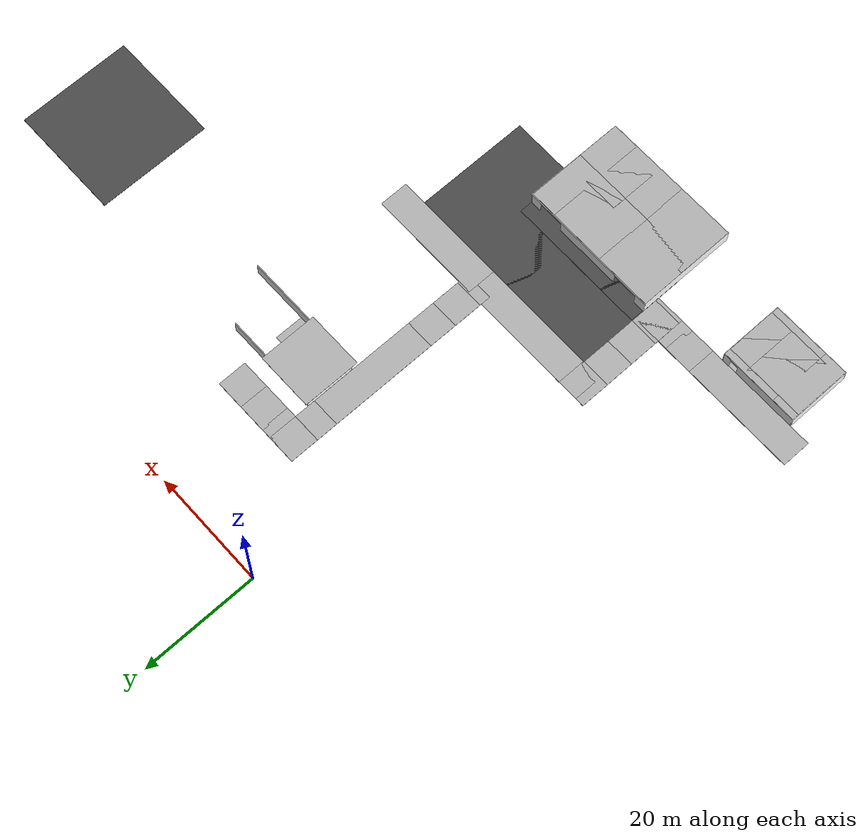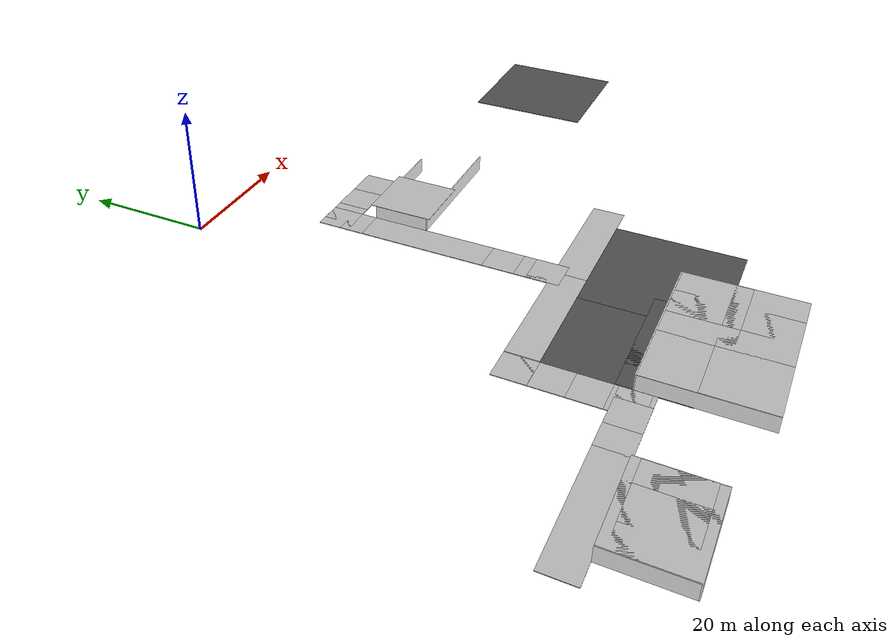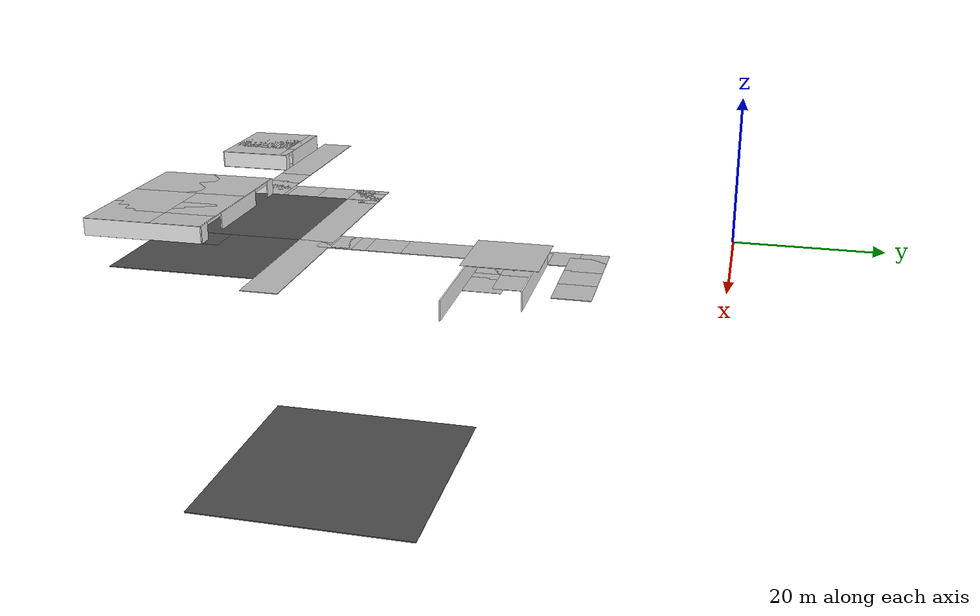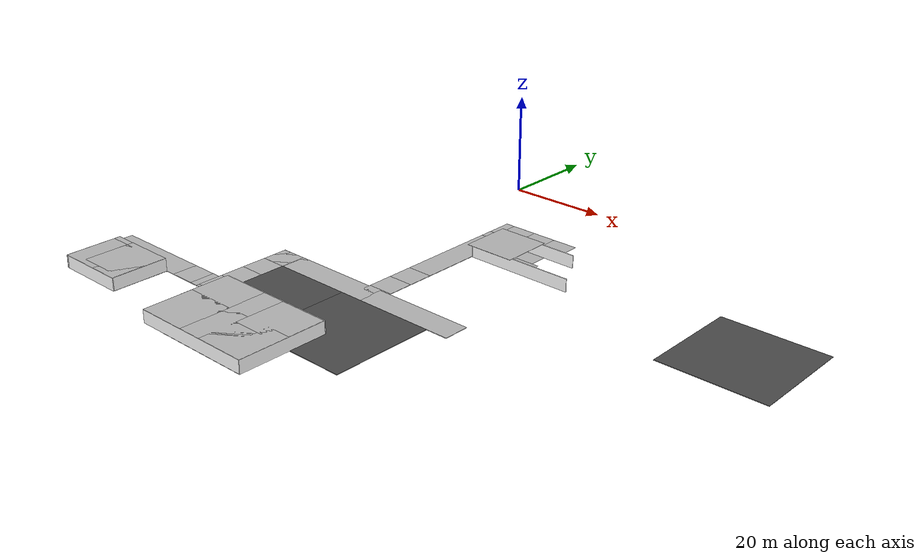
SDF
<sdf version="1.6">
 <world name="default">
  <model name="mainoffice">
   <pose>42.7555 15.4488 0 0 -0 0</pose>
   <link name="Wall_30">
    <collision name="Wall_30_Collision">
     <geometry><box><size>21.5 0.15 2.5</size></box></geometry>
     <pose>0 0 1.25 0 -0 0</pose>
    </collision>
    <visual name="Wall_30_Visual">
     <pose>0 0 1.25 0 -0 0</pose>
     <geometry><box><size>21.5 0.15 2.5</size></box></geometry>
     <material>
      <script>
       <uri>model://office_env/materials/scripts</uri>
       <uri>model://office_env/materials/textures</uri>
       <name>wall</name>
      </script>
      <ambient>1 1 1 1</ambient>
     </material>
    </visual>
    <pose>-17.1741 -47.325 0 0 -0 3.14159</pose>
   </link>
   <link name="Wall_31">
    <collision name="Wall_31_Collision">
     <geometry><box><size>8.75 0.15 2.5</size></box></geometry>
     <pose>0 0 1.25 0 -0 0</pose>
    </collision>
    <visual name="Wall_31_Visual">
     <pose>0 0 1.25 0 -0 0</pose>
     <geometry><box><size>8.75 0.15 2.5</size></box></geometry>
     <material>
      <script>
       <uri>model://office_env/materials/scripts</uri>
       <uri>model://office_env/materials/textures</uri>
       <name>wall</name>
      </script>
      <ambient>1 1 1 1</ambient>
     </material>
    </visual>
    <pose>-27.8491 -43.025 0 0 -0 1.5708</pose>
   </link>
   <link name="Wall_32">
    <collision name="Wall_32_Collision">
     <geometry><box><size>16.5 0.15 2.5</size></box></geometry>
     <pose>0 0 1.25 0 -0 0</pose>
    </collision>
    <visual name="Wall_32_Visual">
     <pose>0 0 1.25 0 -0 0</pose>
     <geometry><box><size>16.5 0.15 2.5</size></box></geometry>
     <material>
      <script>
       <uri>model://office_env/materials/scripts</uri>
       <uri>model://office_env/materials/textures</uri>
       <name>wall</name>
      </script>
      <ambient>1 1 1 1</ambient>
     </material>
    </visual>
    <pose>-19.6741 -38.725 0 0 -0 0</pose>
   </link>
   <static>1</static>
  </model>
  <model name="office3_0">
   <pose>-28.0882 -79.6403 0 0 -0 0</pose>
   <link name="Wall_226">
    <collision name="Wall_226_Collision">
     <geometry><box><size>11.25 0.15 2.5</size></box></geometry>
     <pose>0 0 1.25 0 -0 0</pose>
    </collision>
    <visual name="Wall_226_Visual">
     <pose>0 0 1.25 0 -0 0</pose>
     <geometry><box><size>11.25 0.15 2.5</size></box></geometry>
     <material>
      <script>
       <uri>model://office_env/materials/scripts</uri>
       <uri>model://office_env/materials/textures</uri>
       <name>wall</name>
      </script>
      <ambient>1 1 1 1</ambient>
     </material>
    </visual>
    <pose>-7.05 0 0 0 -0 1.5708</pose>
   </link>
   <link name="Wall_228">
    <pose>0 5.55 0 0 -0 0</pose>
    <visual name="Wall_228_Visual_0">
     <pose>-1.41788 0 1.25 0 -0 0</pose>
     <geometry><box><size>11.4142 0.15 2.5</size></box></geometry>
     <material>
      <script>
       <uri>model://office_env/materials/scripts</uri>
       <uri>model://office_env/materials/textures</uri>
       <name>wall</name>
      </script>
      <ambient>1 1 1 1</ambient>
     </material>
    </visual>
    <collision name="Wall_228_Collision_0">
     <geometry><box><size>11.4142 0.15 2.5</size></box></geometry>
     <pose>-1.41788 0 1.25 0 -0 0</pose>
    </collision>
    <visual name="Wall_228_Visual_1">
     <pose>6.45712 0 1.25 0 -0 0</pose>
     <geometry><box><size>1.33575 0.15 2.5</size></box></geometry>
     <material>
      <script>
       <uri>model://office_env/materials/scripts</uri>
       <uri>model://office_env/materials/textures</uri>
       <name>wall</name>
      </script>
      <ambient>1 1 1 1</ambient>
     </material>
    </visual>
    <collision name="Wall_228_Collision_1">
     <geometry><box><size>1.33575 0.15 2.5</size></box></geometry>
     <pose>6.45712 0 1.25 0 -0 0</pose>
    </collision>
    <visual name="Wall_228_Visual_2">
     <pose>5.03925 0 2.25 0 -0 0</pose>
     <geometry><box><size>1.5 0.15 0.5</size></box></geometry>
     <material>
      <script>
       <uri>model://office_env/materials/scripts</uri>
       <uri>model://office_env/materials/textures</uri>
       <name>wall</name>
      </script>
      <ambient>1 1 1 1</ambient>
     </material>
    </visual>
    <collision name="Wall_228_Collision_2">
     <geometry><box><size>1.5 0.15 0.5</size></box></geometry>
     <pose>5.03925 0 2.25 0 -0 0</pose>
    </collision>
   </link>
   <link name="Wall_229">
    <collision name="Wall_229_Collision">
     <geometry><box><size>11.25 0.15 2.5</size></box></geometry>
     <pose>0 0 1.25 0 -0 0</pose>
    </collision>
    <visual name="Wall_229_Visual">
     <pose>0 0 1.25 0 -0 0</pose>
     <geometry><box><size>11.25 0.15 2.5</size></box></geometry>
     <material>
      <script>
       <uri>model://office_env/materials/scripts</uri>
       <uri>model://office_env/materials/textures</uri>
       <name>wall</name>
      </script>
      <ambient>1 1 1 1</ambient>
     </material>
    </visual>
    <pose>7.05 0 0 0 0 -1.5708</pose>
   </link>
   <link name="Wall_230">
    <collision name="Wall_230_Collision">
     <geometry><box><size>14 0.15 2.5</size></box></geometry>
     <pose>0 0 1.25 0 -0 0</pose>
    </collision>
    <visual name="Wall_230_Visual">
     <pose>0 0 1.25 0 -0 0</pose>
     <geometry><box><size>14 0.15 2.5</size></box></geometry>
     <material>
      <script>
       <uri>model://office_env/materials/scripts</uri>
       <uri>model://office_env/materials/textures</uri>
       <name>wall</name>
      </script>
      <ambient>1 1 1 1</ambient>
     </material>
    </visual>
    <pose>0.125 -5.55 0 0 -0 3.14159</pose>
   </link>
   <link name="Wall_231">
    <collision name="Wall_231_Collision">
     <geometry><box><size>0.4 0.15 2.5</size></box></geometry>
     <pose>0 0 1.25 0 -0 0</pose>
    </collision>
    <visual name="Wall_231_Visual">
     <pose>0 0 1.25 0 -0 0</pose>
     <geometry><box><size>0.4 0.15 2.5</size></box></geometry>
     <material>
      <script>
       <uri>model://office_env/materials/scripts</uri>
       <uri>model://office_env/materials/textures</uri>
       <name>wall</name>
      </script>
      <ambient>1 1 1 1</ambient>
     </material>
    </visual>
    <pose>-6.925 -5.55 0 0 -0 3.14159</pose>
   </link>
   <link name="Wall_235">
    <pose>2.82004 3.69571 0 0 0 -1.5708</pose>
    <visual name="Wall_235_Visual_0">
     <pose>-1.26863 0 1.25 0 -0 0</pose>
     <geometry><box><size>1.21274 0.15 2.5</size></box></geometry>
     <material>
      <script>
       <uri>model://office_env/materials/scripts</uri>
       <uri>model://office_env/materials/textures</uri>
       <name>wall</name>
      </script>
      <ambient>1 1 1 1</ambient>
     </material>
    </visual>
    <collision name="Wall_235_Collision_0">
     <geometry><box><size>1.21274 0.15 2.5</size></box></geometry>
     <pose>-1.26863 0 1.25 0 -0 0</pose>
    </collision>
    <visual name="Wall_235_Visual_1">
     <pose>1.35637 0 1.25 0 -0 0</pose>
     <geometry><box><size>1.03726 0.15 2.5</size></box></geometry>
     <material>
      <script>
       <uri>model://office_env/materials/scripts</uri>
       <uri>model://office_env/materials/textures</uri>
       <name>wall</name>
      </script>
      <ambient>1 1 1 1</ambient>
     </material>
    </visual>
    <collision name="Wall_235_Collision_1">
     <geometry><box><size>1.03726 0.15 2.5</size></box></geometry>
     <pose>1.35637 0 1.25 0 -0 0</pose>
    </collision>
    <visual name="Wall_235_Visual_2">
     <pose>0.087742 0 2.25 0 -0 0</pose>
     <geometry><box><size>1.5 0.15 0.5</size></box></geometry>
     <material>
      <script>
       <uri>model://office_env/materials/scripts</uri>
       <uri>model://office_env/materials/textures</uri>
       <name>wall</name>
      </script>
      <ambient>1 1 1 1</ambient>
     </material>
    </visual>
    <collision name="Wall_235_Collision_2">
     <geometry><box><size>1.5 0.15 0.5</size></box></geometry>
     <pose>0.087742 0 2.25 0 -0 0</pose>
    </collision>
   </link>
   <link name="Wall_236">
    <collision name="Wall_236_Collision">
     <geometry><box><size>4.25 0.15 2.5</size></box></geometry>
     <pose>0 0 1.25 0 -0 0</pose>
    </collision>
    <visual name="Wall_236_Visual">
     <pose>0 0 1.25 0 -0 0</pose>
     <geometry><box><size>4.25 0.15 2.5</size></box></geometry>
     <material>
      <script>
       <uri>model://office_env/materials/scripts</uri>
       <uri>model://office_env/materials/textures</uri>
       <name>wall</name>
      </script>
      <ambient>1 1 1 1</ambient>
     </material>
    </visual>
    <pose>4.87004 1.89571 0 0 -0 0</pose>
   </link>
   <static>1</static>
  </model>
  <model name="park_1">
   <pose>5 -79.6403 0 0 -0 0</pose>
   <link name="Wall_10">
    <collision name="Wall_10_Collision">
     <geometry><box><size>24.75 0.15 2.5</size></box></geometry>
     <pose>0 0 1.25 0 -0 0</pose>
    </collision>
    <visual name="Wall_10_Visual">
     <pose>0 0 1.25 0 -0 0</pose>
     <geometry><box><size>24.75 0.15 2.5</size></box></geometry>
     <material>
      <script>
       <uri>model://office_env/materials/scripts</uri>
       <uri>model://office_env/materials/textures</uri>
       <name>wall</name>
      </script>
      <ambient>1 1 1 1</ambient>
     </material>
    </visual>
    <pose>0 -8.8 0 0 -0 0</pose>
   </link>
   <link name="Wall_11">
    <collision name="Wall_11_Collision">
     <geometry><box><size>17.75 0.15 2.5</size></box></geometry>
     <pose>0 0 1.25 0 -0 0</pose>
    </collision>
    <visual name="Wall_11_Visual">
     <pose>0 0 1.25 0 -0 0</pose>
     <geometry><box><size>17.75 0.15 2.5</size></box></geometry>
     <material>
      <script>
       <uri>model://office_env/materials/scripts</uri>
       <uri>model://office_env/materials/textures</uri>
       <name>wall</name>
      </script>
      <ambient>1 1 1 1</ambient>
     </material>
    </visual>
    <pose>12.3 0 0 0 -0 1.5708</pose>
   </link>
   <link name="Wall_12">
    <pose>0 8.8 0 0 -0 3.14159</pose>
    <visual name="Wall_12_Visual_0">
     <pose>-11.3671 0 1.25 0 -0 0</pose>
     <geometry><box><size>2.0158 0.15 2.5</size></box></geometry>
     <material>
      <script>
       <uri>model://office_env/materials/scripts</uri>
       <uri>model://office_env/materials/textures</uri>
       <name>wall</name>
      </script>
      <ambient>1 1 1 1</ambient>
     </material>
    </visual>
    <collision name="Wall_12_Collision_0">
     <geometry><box><size>2.0158 0.15 2.5</size></box></geometry>
     <pose>-11.3671 0 1.25 0 -0 0</pose>
    </collision>
    <visual name="Wall_12_Visual_1">
     <pose>-0.005473 0 1.25 0 -0 0</pose>
     <geometry><box><size>11.7075 0.15 2.5</size></box></geometry>
     <material>
      <script>
       <uri>model://office_env/materials/scripts</uri>
       <uri>model://office_env/materials/textures</uri>
       <name>wall</name>
      </script>
      <ambient>1 1 1 1</ambient>
     </material>
    </visual>
    <collision name="Wall_12_Collision_1">
     <geometry><box><size>11.7075 0.15 2.5</size></box></geometry>
     <pose>-0.005473 0 1.25 0 -0 0</pose>
    </collision>
    <visual name="Wall_12_Visual_2">
     <pose>11.3616 0 1.25 0 -0 0</pose>
     <geometry><box><size>2.02674 0.15 2.5</size></box></geometry>
     <material>
      <script>
       <uri>model://office_env/materials/scripts</uri>
       <uri>model://office_env/materials/textures</uri>
       <name>wall</name>
      </script>
      <ambient>1 1 1 1</ambient>
     </material>
    </visual>
    <collision name="Wall_12_Collision_2">
     <geometry><box><size>2.02674 0.15 2.5</size></box></geometry>
     <pose>11.3616 0 1.25 0 -0 0</pose>
    </collision>
    <visual name="Wall_12_Visual_3">
     <pose>-8.1092 0 2.3 0 -0 0</pose>
     <geometry><box><size>4.5 0.15 0.4</size></box></geometry>
     <material>
      <script>
       <uri>model://office_env/materials/scripts</uri>
       <uri>model://office_env/materials/textures</uri>
       <name>wall</name>
      </script>
      <ambient>1 1 1 1</ambient>
     </material>
    </visual>
    <collision name="Wall_12_Collision_3">
     <geometry><box><size>4.5 0.15 0.4</size></box></geometry>
     <pose>-8.1092 0 2.3 0 -0 0</pose>
    </collision>
    <visual name="Wall_12_Visual_4">
     <pose>8.09826 0 2.3 0 -0 0</pose>
     <geometry><box><size>4.5 0.15 0.4</size></box></geometry>
     <material>
      <script>
       <uri>model://office_env/materials/scripts</uri>
       <uri>model://office_env/materials/textures</uri>
       <name>wall</name>
      </script>
      <ambient>1 1 1 1</ambient>
     </material>
    </visual>
    <collision name="Wall_12_Collision_4">
     <geometry><box><size>4.5 0.15 0.4</size></box></geometry>
     <pose>8.09826 0 2.3 0 -0 0</pose>
    </collision>
   </link>
   <link name="Wall_4">
    <collision name="Wall_4_Collision">
     <geometry><box><size>17.75 0.15 2.5</size></box></geometry>
     <pose>0 0 1.25 0 -0 0</pose>
    </collision>
    <visual name="Wall_4_Visual">
     <pose>0 0 1.25 0 -0 0</pose>
     <geometry><box><size>17.75 0.15 2.5</size></box></geometry>
     <material>
      <script>
       <uri>model://office_env/materials/scripts</uri>
       <uri>model://office_env/materials/textures</uri>
       <name>wall</name>
      </script>
      <ambient>1 1 1 1</ambient>
     </material>
    </visual>
    <pose>-12.3 0 0 0 0 -1.5708</pose>
   </link>
   <static>1</static>
  </model>
  <model name="asphalt_plane">
   <static>1</static>
   <link name="link">
    <collision name="collision"><geometry><box><size>20 20 0.1</size></box></geometry></collision>
    <visual name="visual">
     <cast_shadows>0</cast_shadows>
     <geometry><box><size>20 20 0.1</size></box></geometry>
     <material>
      <script>
       <uri>model://asphalt_plane/materials/scripts</uri>
       <uri>model://asphalt_plane/materials/textures</uri>
       <name>vrc/asphalt</name>
      </script>
     </material>
    </visual>
   </link>
   <pose>70.7475 -31.5972 0 0 -0 0</pose>
  </model>
  <model name="asphalt_plane_21">
   <static>1</static>
   <link name="link">
    <collision name="collision"><geometry><box><size>20 20 0.1</size></box></geometry></collision>
    <visual name="visual">
     <cast_shadows>0</cast_shadows>
     <geometry><box><size>20 20 0.1</size></box></geometry>
     <material>
      <script>
       <uri>model://asphalt_plane/materials/scripts</uri>
       <uri>model://asphalt_plane/materials/textures</uri>
       <name>vrc/asphalt</name>
      </script>
     </material>
    </visual>
   </link>
   <pose>7.25861 -78.4975 0 0 -0 0</pose>
  </model>
  <model name="asphalt_plane_22">
   <static>1</static>
   <link name="link">
    <collision name="collision"><geometry><box><size>20 20 0.1</size></box></geometry></collision>
    <visual name="visual">
     <cast_shadows>0</cast_shadows>
     <geometry><box><size>20 20 0.1</size></box></geometry>
     <material>
      <script>
       <uri>model://asphalt_plane/materials/scripts</uri>
       <uri>model://asphalt_plane/materials/textures</uri>
       <name>vrc/asphalt</name>
      </script>
     </material>
    </visual>
   </link>
   <pose>2.73538 -78.4496 0 0 -0 0</pose>
  </model>
  <model name="asphalt_plane_23">
   <static>1</static>
   <link name="link">
    <collision name="collision"><geometry><box><size>20 20 0.1</size></box></geometry></collision>
    <visual name="visual">
     <cast_shadows>0</cast_shadows>
     <geometry><box><size>20 20 0.1</size></box></geometry>
     <material>
      <script>
       <uri>model://asphalt_plane/materials/scripts</uri>
       <uri>model://asphalt_plane/materials/textures</uri>
       <name>vrc/asphalt</name>
      </script>
     </material>
    </visual>
   </link>
   <pose>2.60492 -68.4597 0 0 -0 0</pose>
  </model>
  <model name="asphalt_plane_24">
   <static>1</static>
   <link name="link">
    <collision name="collision"><geometry><box><size>20 20 0.1</size></box></geometry></collision>
    <visual name="visual">
     <cast_shadows>0</cast_shadows>
     <geometry><box><size>20 20 0.1</size></box></geometry>
     <material>
      <script>
       <uri>model://asphalt_plane/materials/scripts</uri>
       <uri>model://asphalt_plane/materials/textures</uri>
       <name>vrc/asphalt</name>
      </script>
     </material>
    </visual>
   </link>
   <pose>18.2239 -68.4616 0 0 -0 0</pose>
  </model>
  <model name="table_5">
   <static>0</static>
   <link name="link">
    <collision name="surface">
     <pose>0 0 1 0 -0 0</pose>
     <geometry><box><size>1.5 0.8 0.03</size></box></geometry>
     <surface><friction><ode><mu>0.6</mu><mu2>0.6</mu2></ode></friction></surface>
    </collision>
    <visual name="visual1">
     <pose>0 0 1 0 -0 0</pose>
     <geometry><box><size>1.4 0.8 0.04</size></box></geometry>
     <material>
      <script><uri>file://media/materials/scripts/gazebo.material</uri><name>Gazebo/Wood</name></script>
     </material>
    </visual>
    <collision name="front_left_leg">
     <pose>0.68 0.38 0.5 0 -0 0</pose>
     <geometry><cylinder><radius>0.02</radius><length>1</length></cylinder></geometry>
    </collision>
    <visual name="front_left_leg">
     <pose>0.68 0.38 0.5 0 -0 0</pose>
     <geometry><cylinder><radius>0.02</radius><length>1</length></cylinder></geometry>
     <material>
      <script>
       <uri>model://office_env/materials/scripts</uri>
       <uri>model://office_env/materials/textures</uri>
       <name>wall</name>
      </script>
     </material>
    </visual>
    <collision name="front_right_leg">
     <pose>0.68 -0.38 0.5 0 -0 0</pose>
     <geometry><cylinder><radius>0.02</radius><length>1</length></cylinder></geometry>
    </collision>
    <visual name="front_right_leg">
     <pose>0.68 -0.38 0.5 0 -0 0</pose>
     <geometry><cylinder><radius>0.02</radius><length>1</length></cylinder></geometry>
     <material>
      <script>
       <uri>model://office_env/materials/scripts</uri>
       <uri>model://office_env/materials/textures</uri>
       <name>wall</name>
      </script>
     </material>
    </visual>
    <collision name="back_right_leg">
     <pose>-0.68 -0.38 0.5 0 -0 0</pose>
     <geometry><cylinder><radius>0.02</radius><length>1</length></cylinder></geometry>
    </collision>
    <visual name="back_right_leg">
     <pose>-0.68 -0.38 0.5 0 -0 0</pose>
     <geometry><cylinder><radius>0.02</radius><length>1</length></cylinder></geometry>
     <material>
      <script>
       <uri>model://office_env/materials/scripts</uri>
       <uri>model://office_env/materials/textures</uri>
       <name>wall</name>
      </script>
     </material>
    </visual>
    <collision name="back_left_leg">
     <pose>-0.68 0.38 0.5 0 -0 0</pose>
     <geometry><cylinder><radius>0.02</radius><length>1</length></cylinder></geometry>
    </collision>
    <visual name="back_left_leg">
     <pose>-0.68 0.38 0.5 0 -0 0</pose>
     <geometry><cylinder><radius>0.02</radius><length>1</length></cylinder></geometry>
     <material>
      <script>
       <uri>model://office_env/materials/scripts</uri>
       <uri>model://office_env/materials/textures</uri>
       <name>wall</name>
      </script>
     </material>
    </visual>
    <inertial>
     <inertia><ixx>1</ixx><ixy>0</ixy><ixz>0</ixz><iyy>1</iyy><iyz>0</iyz><izz>1</izz></inertia>
     <mass>1</mass>
    </inertial>
   </link>
   <pose>-28.8169 -84.6215 0.034992 0 -0 0</pose>
  </model>
  <model name="table_6">
   <static>0</static>
   <link name="link">
    <collision name="surface">
     <pose>0 0 1 0 -0 0</pose>
     <geometry><box><size>1.5 0.8 0.03</size></box></geometry>
     <surface><friction><ode><mu>0.6</mu><mu2>0.6</mu2></ode></friction></surface>
    </collision>
    <visual name="visual1">
     <pose>0 0 1 0 -0 0</pose>
     <geometry><box><size>1.4 0.8 0.04</size></box></geometry>
     <material>
      <script><uri>file://media/materials/scripts/gazebo.material</uri><name>Gazebo/Wood</name></script>
     </material>
    </visual>
    <collision name="front_left_leg">
     <pose>0.68 0.38 0.5 0 -0 0</pose>
     <geometry><cylinder><radius>0.02</radius><length>1</length></cylinder></geometry>
    </collision>
    <visual name="front_left_leg">
     <pose>0.68 0.38 0.5 0 -0 0</pose>
     <geometry><cylinder><radius>0.02</radius><length>1</length></cylinder></geometry>
     <material>
      <script>
       <uri>model://office_env/materials/scripts</uri>
       <uri>model://office_env/materials/textures</uri>
       <name>wall</name>
      </script>
     </material>
    </visual>
    <collision name="front_right_leg">
     <pose>0.68 -0.38 0.5 0 -0 0</pose>
     <geometry><cylinder><radius>0.02</radius><length>1</length></cylinder></geometry>
    </collision>
    <visual name="front_right_leg">
     <pose>0.68 -0.38 0.5 0 -0 0</pose>
     <geometry><cylinder><radius>0.02</radius><length>1</length></cylinder></geometry>
     <material>
      <script>
       <uri>model://office_env/materials/scripts</uri>
       <uri>model://office_env/materials/textures</uri>
       <name>wall</name>
      </script>
     </material>
    </visual>
    <collision name="back_right_leg">
     <pose>-0.68 -0.38 0.5 0 -0 0</pose>
     <geometry><cylinder><radius>0.02</radius><length>1</length></cylinder></geometry>
    </collision>
    <visual name="back_right_leg">
     <pose>-0.68 -0.38 0.5 0 -0 0</pose>
     <geometry><cylinder><radius>0.02</radius><length>1</length></cylinder></geometry>
     <material>
      <script>
       <uri>model://office_env/materials/scripts</uri>
       <uri>model://office_env/materials/textures</uri>
       <name>wall</name>
      </script>
     </material>
    </visual>
    <collision name="back_left_leg">
     <pose>-0.68 0.38 0.5 0 -0 0</pose>
     <geometry><cylinder><radius>0.02</radius><length>1</length></cylinder></geometry>
    </collision>
    <visual name="back_left_leg">
     <pose>-0.68 0.38 0.5 0 -0 0</pose>
     <geometry><cylinder><radius>0.02</radius><length>1</length></cylinder></geometry>
     <material>
      <script>
       <uri>model://office_env/materials/scripts</uri>
       <uri>model://office_env/materials/textures</uri>
       <name>wall</name>
      </script>
     </material>
    </visual>
    <inertial>
     <inertia><ixx>1</ixx><ixy>0</ixy><ixz>0</ixz><iyy>1</iyy><iyz>0</iyz><izz>1</izz></inertia>
     <mass>1</mass>
    </inertial>
   </link>
   <pose>-25.0742 -84.5962 0.034992 1e-06 -2e-06 4e-06</pose>
  </model>
  <model name="Floor_15">
   <link name="main">
    <pose>0 0 0.01 0 -0 0</pose>
    <collision name="main_Collision"><geometry><box><size>10 10 0.05</size></box></geometry></collision>
    <visual name="main_Visual">
     <geometry><box><size>10 10 0.05</size></box></geometry>
     <material>
      <script>
       <uri>model://Floor_small/materials/scripts</uri>
       <uri>model://Floor_small/materials/textures</uri>
       <name>floor</name>
      </script>
     </material>
    </visual>
   </link>
   <static>1</static>
   <pose>-25.9365 -80.2194 0 0 -0 0</pose>
  </model>
  <model name="Floor_16">
   <link name="main">
    <pose>0 0 0.01 0 -0 0</pose>
    <collision name="main_Collision"><geometry><box><size>10 10 0.05</size></box></geometry></collision>
    <visual name="main_Visual">
     <geometry><box><size>10 10 0.05</size></box></geometry>
     <material>
      <script>
       <uri>model://Floor_small/materials/scripts</uri>
       <uri>model://Floor_small/materials/textures</uri>
       <name>floor</name>
      </script>
     </material>
    </visual>
   </link>
   <static>1</static>
   <pose>-25.9898 -79.0539 0 0 -0 0</pose>
  </model>
  <model name="Floor_17">
   <link name="main">
    <pose>0 0 0.01 0 -0 0</pose>
    <collision name="main_Collision"><geometry><box><size>10 10 0.05</size></box></geometry></collision>
    <visual name="main_Visual">
     <geometry><box><size>10 10 0.05</size></box></geometry>
     <material>
      <script>
       <uri>model://Floor_small/materials/scripts</uri>
       <uri>model://Floor_small/materials/textures</uri>
       <name>floor</name>
      </script>
     </material>
    </visual>
   </link>
   <static>1</static>
   <pose>-30.0626 -80.1866 0 0 -0 0</pose>
  </model>
  <model name="Floor_18">
   <link name="main">
    <pose>0 0 0.01 0 -0 0</pose>
    <collision name="main_Collision"><geometry><box><size>10 10 0.05</size></box></geometry></collision>
    <visual name="main_Visual">
     <geometry><box><size>10 10 0.05</size></box></geometry>
     <material>
      <script>
       <uri>model://Floor_small/materials/scripts</uri>
       <uri>model://Floor_small/materials/textures</uri>
       <name>floor</name>
      </script>
     </material>
    </visual>
   </link>
   <static>1</static>
   <pose>-30.1417 -79.1069 0 0 -0 0</pose>
  </model>
  <model name="Floor_40">
   <link name="main">
    <pose>0 0 0.01 0 -0 0</pose>
    <collision name="main_Collision"><geometry><box><size>5 5 0.05</size></box></geometry></collision>
    <visual name="main_Visual">
     <geometry><box><size>5 5 0.05</size></box></geometry>
     <material>
      <script>
       <uri>model://Floor_verysmall/materials/scripts</uri>
       <uri>model://Floor_verysmall/materials/textures</uri>
       <name>floor</name>
      </script>
     </material>
    </visual>
   </link>
   <static>1</static>
   <pose>17.456 -25.8689 0 0 -0 0</pose>
  </model>
  <model name="Floor_41">
   <link name="main">
    <pose>0 0 0.01 0 -0 0</pose>
    <collision name="main_Collision"><geometry><box><size>5 5 0.05</size></box></geometry></collision>
    <visual name="main_Visual">
     <geometry><box><size>5 5 0.05</size></box></geometry>
     <material>
      <script>
       <uri>model://Floor_verysmall/materials/scripts</uri>
       <uri>model://Floor_verysmall/materials/textures</uri>
       <name>floor</name>
      </script>
     </material>
    </visual>
   </link>
   <static>1</static>
   <pose>22.414 -25.8333 0 0 -0 0</pose>
  </model>
  <model name="Floor_47">
   <link name="main">
    <pose>0 0 0.01 0 -0 0</pose>
    <collision name="main_Collision"><geometry><box><size>5 5 0.05</size></box></geometry></collision>
    <visual name="main_Visual">
     <geometry><box><size>5 5 0.05</size></box></geometry>
     <material>
      <script>
       <uri>model://Floor_verysmall/materials/scripts</uri>
       <uri>model://Floor_verysmall/materials/textures</uri>
       <name>floor</name>
      </script>
     </material>
    </visual>
   </link>
   <static>1</static>
   <pose>23.8279 -29.3586 0 0 -0 0</pose>
  </model>
  <model name="Floor_48">
   <link name="main">
    <pose>0 0 0.01 0 -0 0</pose>
    <collision name="main_Collision"><geometry><box><size>5 5 0.05</size></box></geometry></collision>
    <visual name="main_Visual">
     <geometry><box><size>5 5 0.05</size></box></geometry>
     <material>
      <script>
       <uri>model://Floor_verysmall/materials/scripts</uri>
       <uri>model://Floor_verysmall/materials/textures</uri>
       <name>floor</name>
      </script>
     </material>
    </visual>
   </link>
   <static>1</static>
   <pose>19.2288 -29.3542 0 0 -0 0</pose>
  </model>
  <model name="Floor_49">
   <link name="main">
    <pose>0 0 0.01 0 -0 0</pose>
    <collision name="main_Collision"><geometry><box><size>5 5 0.05</size></box></geometry></collision>
    <visual name="main_Visual">
     <geometry><box><size>5 5 0.05</size></box></geometry>
     <material>
      <script>
       <uri>model://Floor_verysmall/materials/scripts</uri>
       <uri>model://Floor_verysmall/materials/textures</uri>
       <name>floor</name>
      </script>
     </material>
    </visual>
   </link>
   <static>1</static>
   <pose>17.312 -29.2833 0 0 -0 0</pose>
  </model>
  <model name="outdoor_plane_clone_clone">
   <static>1</static>
   <link name="link">
    <collision name="collision"><geometry><box><size>5 20 0.1</size></box></geometry></collision>
    <visual name="visual">
     <cast_shadows>0</cast_shadows>
     <geometry><box><size>5 20 0.1</size></box></geometry>
     <material>
      <script>
       <uri>model://outdoor_plane/materials/scripts</uri>
       <uri>model://outdoor_plane/materials/textures</uri>
       <name>outds/Image</name>
      </script>
     </material>
    </visual>
   </link>
   <pose>-28.8608 -71.5211 0 0 -0 1.57079</pose>
  </model>
  <model name="outdoor_plane_0">
   <static>1</static>
   <link name="link">
    <collision name="collision"><geometry><box><size>5 5 0.1</size></box></geometry></collision>
    <visual name="visual">
     <cast_shadows>0</cast_shadows>
     <geometry><box><size>5 5 0.1</size></box></geometry>
     <material>
      <script>
       <uri>model://outdoor_planesmall/materials/scripts</uri>
       <uri>model://outdoor_planesmall/materials/textures</uri>
       <name>outdss/Image</name>
      </script>
     </material>
    </visual>
   </link>
   <pose>-16.5068 -71.5163 0 0 -0 0</pose>
  </model>
  <model name="outdoor_plane_1">
   <static>1</static>
   <link name="link">
    <collision name="collision"><geometry><box><size>5 5 0.1</size></box></geometry></collision>
    <visual name="visual">
     <cast_shadows>0</cast_shadows>
     <geometry><box><size>5 5 0.1</size></box></geometry>
     <material>
      <script>
       <uri>model://outdoor_planesmall/materials/scripts</uri>
       <uri>model://outdoor_planesmall/materials/textures</uri>
       <name>outdss/Image</name>
      </script>
     </material>
    </visual>
   </link>
   <pose>-12.1261 -71.5221 0 0 -0 0</pose>
  </model>
  <model name="outdoor_plane_clone_clone_clone">
   <static>1</static>
   <link name="link">
    <collision name="collision"><geometry><box><size>5 20 0.1</size></box></geometry></collision>
    <visual name="visual">
     <cast_shadows>0</cast_shadows>
     <geometry><box><size>5 20 0.1</size></box></geometry>
     <material>
      <script>
       <uri>model://outdoor_plane/materials/scripts</uri>
       <uri>model://outdoor_plane/materials/textures</uri>
       <name>outds/Image</name>
      </script>
     </material>
    </visual>
   </link>
   <pose>2.74248 -55.9539 0 0 -0 1.57079</pose>
  </model>
  <model name="outdoor_plane_clone_clone_clone_clone">
   <static>1</static>
   <link name="link">
    <collision name="collision"><geometry><box><size>5 20 0.1</size></box></geometry></collision>
    <visual name="visual">
     <cast_shadows>0</cast_shadows>
     <geometry><box><size>5 20 0.1</size></box></geometry>
     <material>
      <script>
       <uri>model://outdoor_plane/materials/scripts</uri>
       <uri>model://outdoor_plane/materials/textures</uri>
       <name>outds/Image</name>
      </script>
     </material>
    </visual>
   </link>
   <pose>22.5169 -55.9462 0 0 -0 1.57079</pose>
  </model>
  <model name="outdoor_plane_3">
   <static>1</static>
   <link name="link">
    <collision name="collision"><geometry><box><size>5 5 0.1</size></box></geometry></collision>
    <visual name="visual">
     <cast_shadows>0</cast_shadows>
     <geometry><box><size>5 5 0.1</size></box></geometry>
     <material>
      <script>
       <uri>model://outdoor_planesmall/materials/scripts</uri>
       <uri>model://outdoor_planesmall/materials/textures</uri>
       <name>outdss/Image</name>
      </script>
     </material>
    </visual>
   </link>
   <pose>-9.89426 -56.0168 0 0 -0 0</pose>
  </model>
  <model name="outdoor_plane_4">
   <static>1</static>
   <link name="link">
    <collision name="collision"><geometry><box><size>5 5 0.1</size></box></geometry></collision>
    <visual name="visual">
     <cast_shadows>0</cast_shadows>
     <geometry><box><size>5 5 0.1</size></box></geometry>
     <material>
      <script>
       <uri>model://outdoor_planesmall/materials/scripts</uri>
       <uri>model://outdoor_planesmall/materials/textures</uri>
       <name>outdss/Image</name>
      </script>
     </material>
    </visual>
   </link>
   <pose>-9.89523 -65.9605 0 0 -0 0</pose>
  </model>
  <model name="outdoor_plane_5">
   <static>1</static>
   <link name="link">
    <collision name="collision"><geometry><box><size>5 5 0.1</size></box></geometry></collision>
    <visual name="visual">
     <cast_shadows>0</cast_shadows>
     <geometry><box><size>5 5 0.1</size></box></geometry>
     <material>
      <script>
       <uri>model://outdoor_planesmall/materials/scripts</uri>
       <uri>model://outdoor_planesmall/materials/textures</uri>
       <name>outdss/Image</name>
      </script>
     </material>
    </visual>
   </link>
   <pose>-9.89906 -60.9977 0 0 -0 0</pose>
  </model>
  <model name="outdoor_plane_6">
   <static>1</static>
   <link name="link">
    <collision name="collision"><geometry><box><size>5 5 0.1</size></box></geometry></collision>
    <visual name="visual">
     <cast_shadows>0</cast_shadows>
     <geometry><box><size>5 5 0.1</size></box></geometry>
     <material>
      <script>
       <uri>model://outdoor_planesmall/materials/scripts</uri>
       <uri>model://outdoor_planesmall/materials/textures</uri>
       <name>outdss/Image</name>
      </script>
     </material>
    </visual>
   </link>
   <pose>-9.89735 -70.918 0 0 -0 0</pose>
  </model>
  <model name="outdoor_plane_7">
   <static>1</static>
   <link name="link">
    <collision name="collision"><geometry><box><size>5 5 0.1</size></box></geometry></collision>
    <visual name="visual">
     <cast_shadows>0</cast_shadows>
     <geometry><box><size>5 5 0.1</size></box></geometry>
     <material>
      <script>
       <uri>model://outdoor_planesmall/materials/scripts</uri>
       <uri>model://outdoor_planesmall/materials/textures</uri>
       <name>outdss/Image</name>
      </script>
     </material>
    </visual>
   </link>
   <pose>-9.8805 -71.5289 0 0 -0 0</pose>
  </model>
  <model name="outdoor_plane_21">
   <static>1</static>
   <link name="link">
    <collision name="collision"><geometry><box><size>5 20 0.1</size></box></geometry></collision>
    <visual name="visual">
     <cast_shadows>0</cast_shadows>
     <geometry><box><size>5 20 0.1</size></box></geometry>
     <material>
      <script>
       <uri>model://outdoor_plane/materials/scripts</uri>
       <uri>model://outdoor_plane/materials/textures</uri>
       <name>outds/Image</name>
      </script>
     </material>
    </visual>
   </link>
   <pose>12.3123 -33.2125 0 0 -0 0</pose>
  </model>
  <model name="outdoor_plane_22">
   <static>1</static>
   <link name="link">
    <collision name="collision"><geometry><box><size>5 5 0.1</size></box></geometry></collision>
    <visual name="visual">
     <cast_shadows>0</cast_shadows>
     <geometry><box><size>5 5 0.1</size></box></geometry>
     <material>
      <script>
       <uri>model://outdoor_planesmall/materials/scripts</uri>
       <uri>model://outdoor_planesmall/materials/textures</uri>
       <name>outdss/Image</name>
      </script>
     </material>
    </visual>
   </link>
   <pose>12.3093 -45.7103 0 0 -0 0</pose>
  </model>
  <model name="outdoor_plane_23">
   <static>1</static>
   <link name="link">
    <collision name="collision"><geometry><box><size>5 5 0.1</size></box></geometry></collision>
    <visual name="visual">
     <cast_shadows>0</cast_shadows>
     <geometry><box><size>5 5 0.1</size></box></geometry>
     <material>
      <script>
       <uri>model://outdoor_planesmall/materials/scripts</uri>
       <uri>model://outdoor_planesmall/materials/textures</uri>
       <name>outdss/Image</name>
      </script>
     </material>
    </visual>
   </link>
   <pose>12.2996 -50.6831 0 0 -0 0</pose>
  </model>
  <model name="outdoor_plane_24">
   <static>1</static>
   <link name="link">
    <collision name="collision"><geometry><box><size>5 5 0.1</size></box></geometry></collision>
    <visual name="visual">
     <cast_shadows>0</cast_shadows>
     <geometry><box><size>5 5 0.1</size></box></geometry>
     <material>
      <script>
       <uri>model://outdoor_planesmall/materials/scripts</uri>
       <uri>model://outdoor_planesmall/materials/textures</uri>
       <name>outdss/Image</name>
      </script>
     </material>
    </visual>
   </link>
   <pose>12.3029 -52.649 0 0 -0 0</pose>
  </model>
  <model name="outdoor_plane_26">
   <static>1</static>
   <link name="link">
    <collision name="collision"><geometry><box><size>5 5 0.1</size></box></geometry></collision>
    <visual name="visual">
     <cast_shadows>0</cast_shadows>
     <geometry><box><size>5 5 0.1</size></box></geometry>
     <material>
      <script>
       <uri>model://outdoor_planesmall/materials/scripts</uri>
       <uri>model://outdoor_planesmall/materials/textures</uri>
       <name>outdss/Image</name>
      </script>
     </material>
    </visual>
   </link>
   <pose>23.8351 -18.2234 0 0 -0 0</pose>
  </model>
  <model name="outdoor_plane_27">
   <static>1</static>
   <link name="link">
    <collision name="collision"><geometry><box><size>5 5 0.1</size></box></geometry></collision>
    <visual name="visual">
     <cast_shadows>0</cast_shadows>
     <geometry><box><size>5 5 0.1</size></box></geometry>
     <material>
      <script>
       <uri>model://outdoor_planesmall/materials/scripts</uri>
       <uri>model://outdoor_planesmall/materials/textures</uri>
       <name>outdss/Image</name>
      </script>
     </material>
    </visual>
   </link>
   <pose>18.8599 -18.2392 0 0 -0 0</pose>
  </model>
  <model name="outdoor_plane_28">
   <static>1</static>
   <link name="link">
    <collision name="collision"><geometry><box><size>5 5 0.1</size></box></geometry></collision>
    <visual name="visual">
     <cast_shadows>0</cast_shadows>
     <geometry><box><size>5 5 0.1</size></box></geometry>
     <material>
      <script>
       <uri>model://outdoor_planesmall/materials/scripts</uri>
       <uri>model://outdoor_planesmall/materials/textures</uri>
       <name>outdss/Image</name>
      </script>
     </material>
    </visual>
   </link>
   <pose>14.1258 -18.2496 0 0 -0 0</pose>
  </model>
  <model name="outdoor_plane_29">
   <static>1</static>
   <link name="link">
    <collision name="collision"><geometry><box><size>5 5 0.1</size></box></geometry></collision>
    <visual name="visual">
     <cast_shadows>0</cast_shadows>
     <geometry><box><size>5 5 0.1</size></box></geometry>
     <material>
      <script>
       <uri>model://outdoor_planesmall/materials/scripts</uri>
       <uri>model://outdoor_planesmall/materials/textures</uri>
       <name>outdss/Image</name>
      </script>
     </material>
    </visual>
   </link>
   <pose>12.3182 -18.2438 0 0 -0 0</pose>
  </model>
  <model name="outdoor_plane_30">
   <static>1</static>
   <link name="link">
    <collision name="collision"><geometry><box><size>5 5 0.1</size></box></geometry></collision>
    <visual name="visual">
     <cast_shadows>0</cast_shadows>
     <geometry><box><size>5 5 0.1</size></box></geometry>
     <material>
      <script>
       <uri>model://outdoor_planesmall/materials/scripts</uri>
       <uri>model://outdoor_planesmall/materials/textures</uri>
       <name>outdss/Image</name>
      </script>
     </material>
    </visual>
   </link>
   <pose>12.311 -21.9753 0 0 -0 0</pose>
  </model>
  <model name="Floor_1">
   <link name="main">
    <pose>0 0 0.01 0 -0 0</pose>
    <collision name="main_Collision"><geometry><box><size>5 5 0.05</size></box></geometry></collision>
    <visual name="main_Visual">
     <geometry><box><size>5 5 0.05</size></box></geometry>
     <material>
      <script>
       <uri>model://Floor_verysmall/materials/scripts</uri>
       <uri>model://Floor_verysmall/materials/textures</uri>
       <name>floor</name>
      </script>
     </material>
    </visual>
   </link>
   <static>1</static>
   <pose>-23.3933 -75.9933 0 0 -0 0</pose>
  </model>
  <model name="outdoor_plane">
   <static>1</static>
   <link name="link">
    <collision name="collision"><geometry><box><size>5 5 0.1</size></box></geometry></collision>
    <visual name="visual">
     <cast_shadows>0</cast_shadows>
     <geometry><box><size>5 5 0.1</size></box></geometry>
     <material>
      <script>
       <uri>model://outdoor_planesmall/materials/scripts</uri>
       <uri>model://outdoor_planesmall/materials/textures</uri>
       <name>outdss/Image</name>
      </script>
     </material>
    </visual>
   </link>
   <pose>-8.37357 -55.9664 0 0 -0 0</pose>
  </model>
  <model name="outdoor_plane_2">
   <static>1</static>
   <link name="link">
    <collision name="collision"><geometry><box><size>5 5 0.1</size></box></geometry></collision>
    <visual name="visual">
     <cast_shadows>0</cast_shadows>
     <geometry><box><size>5 5 0.1</size></box></geometry>
     <material>
      <script>
       <uri>model://outdoor_planesmall/materials/scripts</uri>
       <uri>model://outdoor_planesmall/materials/textures</uri>
       <name>outdss/Image</name>
      </script>
     </material>
    </visual>
   </link>
   <pose>-9.89748 -55.9687 0 0 -0 0</pose>
  </model>
  <model name="Floor_3_clone_6">
   <link name="main">
    <pose>0 0 0.01 0 -0 0</pose>
    <collision name="main_Collision"><geometry><box><size>10 10 0.05</size></box></geometry></collision>
    <visual name="main_Visual">
     <geometry><box><size>10 10 0.05</size></box></geometry>
     <material>
      <script>
       <uri>model://Floor_small/materials/scripts</uri>
       <uri>model://Floor_small/materials/textures</uri>
       <name>floor</name>
      </script>
     </material>
    </visual>
   </link>
   <static>1</static>
   <pose>-30.1109 -80.2344 2.5 0 -0 0</pose>
  </model>
  <model name="Floor_3_clone_7">
   <link name="main">
    <pose>0 0 0.01 0 -0 0</pose>
    <collision name="main_Collision"><geometry><box><size>10 10 0.05</size></box></geometry></collision>
    <visual name="main_Visual">
     <geometry><box><size>10 10 0.05</size></box></geometry>
     <material>
      <script>
       <uri>model://Floor_small/materials/scripts</uri>
       <uri>model://Floor_small/materials/textures</uri>
       <name>floor</name>
      </script>
     </material>
    </visual>
   </link>
   <static>1</static>
   <pose>-30.12 -79.043 2.5 0 -0 0</pose>
  </model>
  <model name="Floor_3_clone_8">
   <link name="main">
    <pose>0 0 0.01 0 -0 0</pose>
    <collision name="main_Collision"><geometry><box><size>10 10 0.05</size></box></geometry></collision>
    <visual name="main_Visual">
     <geometry><box><size>10 10 0.05</size></box></geometry>
     <material>
      <script>
       <uri>model://Floor_small/materials/scripts</uri>
       <uri>model://Floor_small/materials/textures</uri>
       <name>floor</name>
      </script>
     </material>
    </visual>
   </link>
   <static>1</static>
   <pose>-26.0662 -80.2248 2.5 0 -0 0</pose>
  </model>
  <model name="Floor_3_clone_9">
   <link name="main">
    <pose>0 0 0.01 0 -0 0</pose>
    <collision name="main_Collision"><geometry><box><size>10 10 0.05</size></box></geometry></collision>
    <visual name="main_Visual">
     <geometry><box><size>10 10 0.05</size></box></geometry>
     <material>
      <script>
       <uri>model://Floor_small/materials/scripts</uri>
       <uri>model://Floor_small/materials/textures</uri>
       <name>floor</name>
      </script>
     </material>
    </visual>
   </link>
   <static>1</static>
   <pose>-26.0267 -79.0383 2.5 0 -0 0</pose>
  </model>
  <model name="Floor_3_clone_11">
   <link name="main">
    <pose>0 0 0.01 0 -0 0</pose>
    <collision name="main_Collision"><geometry><box><size>10 10 0.05</size></box></geometry></collision>
    <visual name="main_Visual">
     <geometry><box><size>10 10 0.05</size></box></geometry>
     <material>
      <script>
       <uri>model://Floor_small/materials/scripts</uri>
       <uri>model://Floor_small/materials/textures</uri>
       <name>floor</name>
      </script>
     </material>
    </visual>
   </link>
   <static>1</static>
   <pose>-2.32398 -83.5163 2.5 0 -0 0</pose>
  </model>
  <model name="Floor_3_clone_12">
   <link name="main">
    <pose>0 0 0.01 0 -0 0</pose>
    <collision name="main_Collision"><geometry><box><size>10 10 0.05</size></box></geometry></collision>
    <visual name="main_Visual">
     <geometry><box><size>10 10 0.05</size></box></geometry>
     <material>
      <script>
       <uri>model://Floor_small/materials/scripts</uri>
       <uri>model://Floor_small/materials/textures</uri>
       <name>floor</name>
      </script>
     </material>
    </visual>
   </link>
   <static>1</static>
   <pose>7.57189 -83.4994 2.5 0 -0 0</pose>
  </model>
  <model name="Floor_3_clone_13">
   <link name="main">
    <pose>0 0 0.01 0 -0 0</pose>
    <collision name="main_Collision"><geometry><box><size>10 10 0.05</size></box></geometry></collision>
    <visual name="main_Visual">
     <geometry><box><size>10 10 0.05</size></box></geometry>
     <material>
      <script>
       <uri>model://Floor_small/materials/scripts</uri>
       <uri>model://Floor_small/materials/textures</uri>
       <name>floor</name>
      </script>
     </material>
    </visual>
   </link>
   <static>1</static>
   <pose>7.54245 -75.9178 2.5 0 -0 0</pose>
  </model>
  <model name="Floor_3_clone_14">
   <link name="main">
    <pose>0 0 0.01 0 -0 0</pose>
    <collision name="main_Collision"><geometry><box><size>10 10 0.05</size></box></geometry></collision>
    <visual name="main_Visual">
     <geometry><box><size>10 10 0.05</size></box></geometry>
     <material>
      <script>
       <uri>model://Floor_small/materials/scripts</uri>
       <uri>model://Floor_small/materials/textures</uri>
       <name>floor</name>
      </script>
     </material>
    </visual>
   </link>
   <static>1</static>
   <pose>12.3419 -83.4877 2.5 0 -0 0</pose>
  </model>
  <model name="Floor_3_clone_15">
   <link name="main">
    <pose>0 0 0.01 0 -0 0</pose>
    <collision name="main_Collision"><geometry><box><size>10 10 0.05</size></box></geometry></collision>
    <visual name="main_Visual">
     <geometry><box><size>10 10 0.05</size></box></geometry>
     <material>
      <script>
       <uri>model://Floor_small/materials/scripts</uri>
       <uri>model://Floor_small/materials/textures</uri>
       <name>floor</name>
      </script>
     </material>
    </visual>
   </link>
   <static>1</static>
   <pose>12.2996 -75.9411 2.5 0 -0 0</pose>
  </model>
  <model name="Floor_3_clone_10">
   <link name="main">
    <pose>0 0 0.01 0 -0 0</pose>
    <collision name="main_Collision"><geometry><box><size>10 10 0.05</size></box></geometry></collision>
    <visual name="main_Visual">
     <geometry><box><size>10 10 0.05</size></box></geometry>
     <material>
      <script>
       <uri>model://Floor_small/materials/scripts</uri>
       <uri>model://Floor_small/materials/textures</uri>
       <name>floor</name>
      </script>
     </material>
    </visual>
   </link>
   <static>1</static>
   <pose>-2.36778 -75.9027 2.5 0 -0 0</pose>
  </model>
  <model name="Floor_3_clone_18">
   <link name="main">
    <pose>0 0 0.01 0 -0 0</pose>
    <collision name="main_Collision"><geometry><box><size>10 10 0.05</size></box></geometry></collision>
    <visual name="main_Visual">
     <geometry><box><size>10 10 0.05</size></box></geometry>
     <material>
      <script>
       <uri>model://Floor_small/materials/scripts</uri>
       <uri>model://Floor_small/materials/textures</uri>
       <name>floor</name>
      </script>
     </material>
    </visual>
   </link>
   <static>1</static>
   <pose>19.3286 -27.5716 2.5 0 -0 0</pose>
  </model>
 </world>
</sdf>
